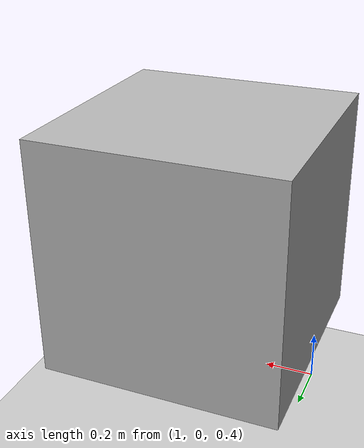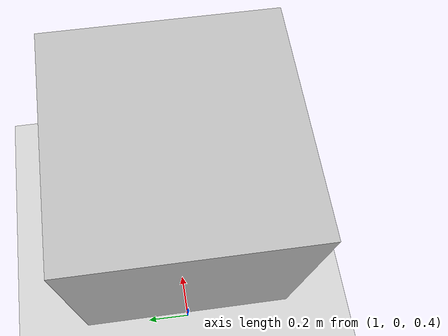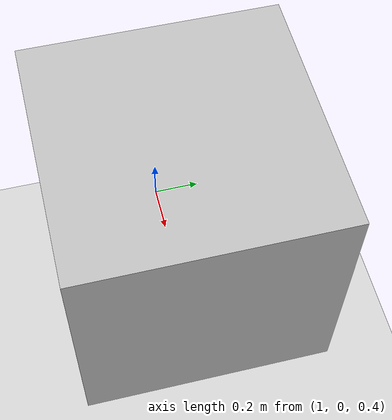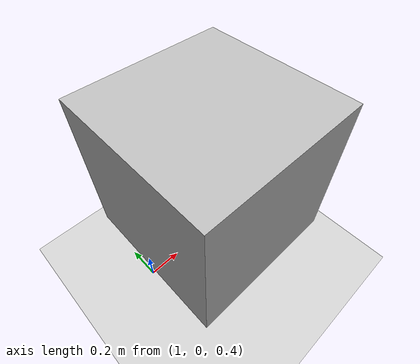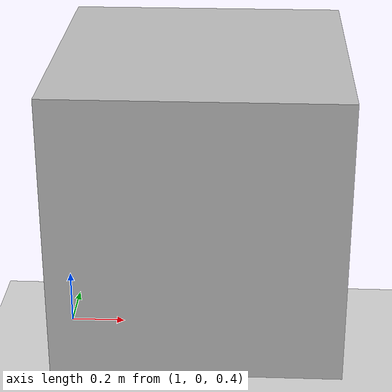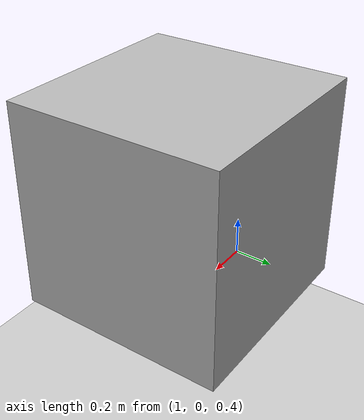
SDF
<?xml version="1.0" ?>
<sdf version="1.5">
 <world name="default">
   <!-- A global light source -->
   <include>
     <uri>model://sun</uri>
   </include>
   <!-- A ground plane -->
   <include>
     <uri>model://ground_plane</uri>
   </include>

    <model name="target_box">
      <static>true</static>
      <pose>1.5 0 1 0 0 0</pose>
      <link name="link">
        <collision name="collision">
          <geometry>
            <box>
              <size>1 1 1</size>
            </box>
          </geometry>
        </collision>
        <visual name="visual">
          <geometry>
            <box>
              <size>1 1 1</size>
            </box>
          </geometry>
        </visual>
      </link>
    </model>

 </world>
</sdf>
